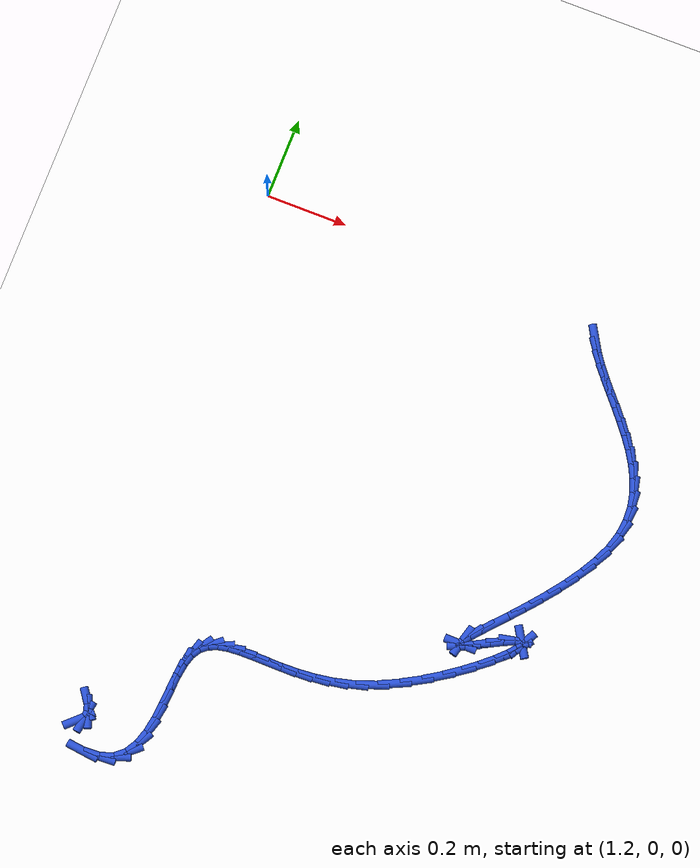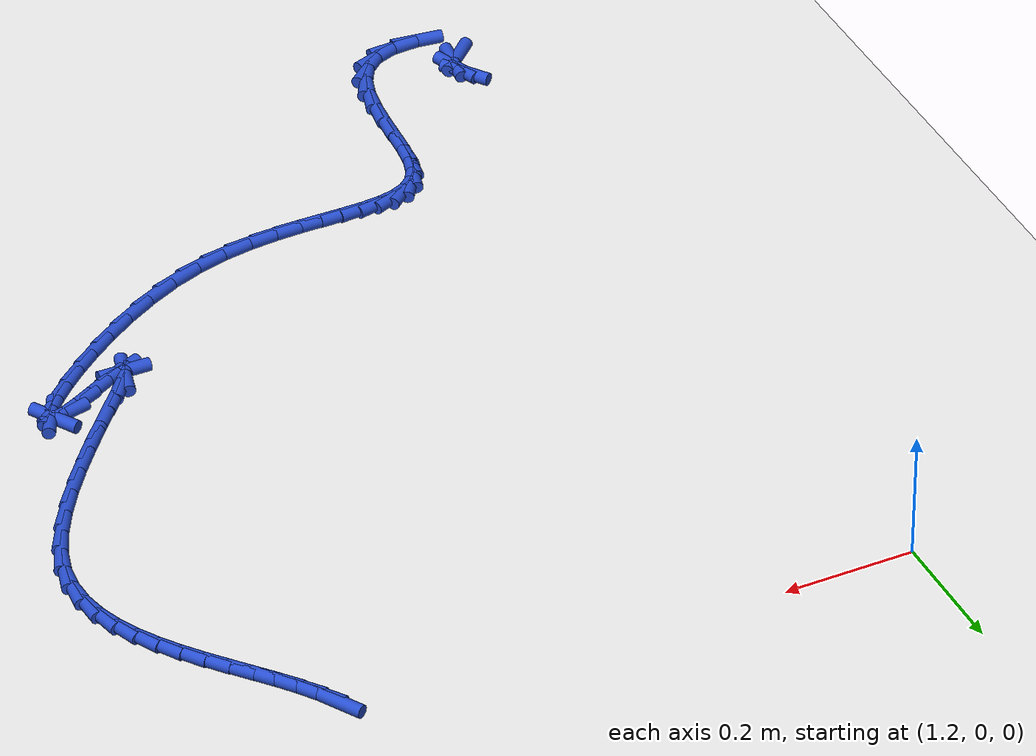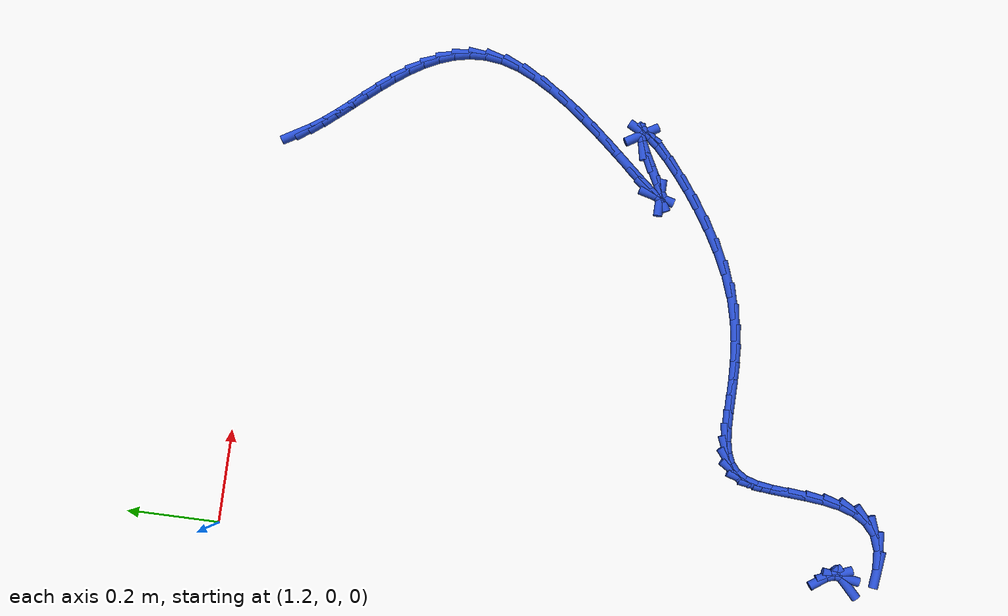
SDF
<sdf version="1.6">
 <world name="default">
  <model name="ground_plane">
   <static>1</static>
   <link name="link">
    <collision name="collision">
     <geometry><plane><normal>0 0 1</normal><size>100 100</size></plane></geometry>
     <surface><friction><ode><mu>100</mu><mu2>50</mu2></ode></friction></surface>
    </collision>
    <visual name="visual">
     <cast_shadows>0</cast_shadows>
     <geometry><plane><normal>0 0 1</normal><size>100 100</size></plane></geometry>
     <material>
      <script><uri>file://media/materials/scripts/gazebo.material</uri><name>Gazebo/WhiteGlow</name></script>
     </material>
    </visual>
   </link>
  </model>
  <model name="line">
   <link name="link_138">
    <pose>2.0597957309310257 -0.0516722177636948 0.01 0 1.57 -1.0397607232825208</pose>
    <collision name="collision">
     <geometry><cylinder><radius>0.01</radius><length>0.08</length></cylinder></geometry>
    </collision>
    <visual name="visual">
     <material>
      <script><name>Gazebo/Blue</name><uri>file://media/materials/scripts/gazebo.material</uri></script>
     </material>
     <geometry><cylinder><radius>0.01</radius><length>0.08</length></cylinder></geometry>
    </visual>
   </link>
   <link name="link_139">
    <pose>2.0750422624456326 -0.07763220129197099 0.01 0 1.57 -0.9546742133846565</pose>
    <collision name="collision">
     <geometry><cylinder><radius>0.01</radius><length>0.08</length></cylinder></geometry>
    </collision>
    <visual name="visual">
     <material>
      <script><name>Gazebo/Blue</name><uri>file://media/materials/scripts/gazebo.material</uri></script>
     </material>
     <geometry><cylinder><radius>0.01</radius><length>0.08</length></cylinder></geometry>
    </visual>
   </link>
   <link name="link_140">
    <pose>2.0935173348266654 -0.10372432611003896 0.01 0 1.57 -0.8998748665494425</pose>
    <collision name="collision">
     <geometry><cylinder><radius>0.01</radius><length>0.08</length></cylinder></geometry>
    </collision>
    <visual name="visual">
     <material>
      <script><name>Gazebo/Blue</name><uri>file://media/materials/scripts/gazebo.material</uri></script>
     </material>
     <geometry><cylinder><radius>0.01</radius><length>0.08</length></cylinder></geometry>
    </visual>
   </link>
   <link name="link_141">
    <pose>2.114430989677713 -0.13007206841040236 0.01 0 1.57 -0.8696903864607244</pose>
    <collision name="collision">
     <geometry><cylinder><radius>0.01</radius><length>0.08</length></cylinder></geometry>
    </collision>
    <visual name="visual">
     <material>
      <script><name>Gazebo/Blue</name><uri>file://media/materials/scripts/gazebo.material</uri></script>
     </material>
     <geometry><cylinder><radius>0.01</radius><length>0.08</length></cylinder></geometry>
    </visual>
   </link>
   <link name="link_142">
    <pose>2.1369932686023643 -0.15679890438556612 0.01 0 1.57 -0.8604481508920307</pose>
    <collision name="collision">
     <geometry><cylinder><radius>0.01</radius><length>0.08</length></cylinder></geometry>
    </collision>
    <visual name="visual">
     <material>
      <script><name>Gazebo/Blue</name><uri>file://media/materials/scripts/gazebo.material</uri></script>
     </material>
     <geometry><cylinder><radius>0.01</radius><length>0.08</length></cylinder></geometry>
    </visual>
   </link>
   <link name="link_143">
    <pose>2.1604142132042092 -0.18402831022803476 0.01 0 1.57 -0.8702226887666695</pose>
    <collision name="collision">
     <geometry><cylinder><radius>0.01</radius><length>0.08</length></cylinder></geometry>
    </collision>
    <visual name="visual">
     <material>
      <script><name>Gazebo/Blue</name><uri>file://media/materials/scripts/gazebo.material</uri></script>
     </material>
     <geometry><cylinder><radius>0.01</radius><length>0.08</length></cylinder></geometry>
    </visual>
   </link>
   <link name="link_144">
    <pose>2.183903865086838 -0.21188376213031285 0.01 0 1.57 -0.8985239679841446</pose>
    <collision name="collision">
     <geometry><cylinder><radius>0.01</radius><length>0.08</length></cylinder></geometry>
    </collision>
    <visual name="visual">
     <material>
      <script><name>Gazebo/Blue</name><uri>file://media/materials/scripts/gazebo.material</uri></script>
     </material>
     <geometry><cylinder><radius>0.01</radius><length>0.08</length></cylinder></geometry>
    </visual>
   </link>
   <link name="link_145">
    <pose>2.2066722658538396 -0.24048873628490486 0.01 0 1.57 -0.9460352512099913</pose>
    <collision name="collision">
     <geometry><cylinder><radius>0.01</radius><length>0.08</length></cylinder></geometry>
    </collision>
    <visual name="visual">
     <material>
      <script><name>Gazebo/Blue</name><uri>file://media/materials/scripts/gazebo.material</uri></script>
     </material>
     <geometry><cylinder><radius>0.01</radius><length>0.08</length></cylinder></geometry>
    </visual>
   </link>
   <link name="link_146">
    <pose>2.227929457108804 -0.26996670888431623 0.01 0 1.57 -1.0143355238114373</pose>
    <collision name="collision">
     <geometry><cylinder><radius>0.01</radius><length>0.08</length></cylinder></geometry>
    </collision>
    <visual name="visual">
     <material>
      <script><name>Gazebo/Blue</name><uri>file://media/materials/scripts/gazebo.material</uri></script>
     </material>
     <geometry><cylinder><radius>0.01</radius><length>0.08</length></cylinder></geometry>
    </visual>
   </link>
   <link name="link_147">
    <pose>2.24688548045532 -0.30044115612104966 0.01 0 1.57 -1.1054360098998903</pose>
    <collision name="collision">
     <geometry><cylinder><radius>0.01</radius><length>0.08</length></cylinder></geometry>
    </collision>
    <visual name="visual">
     <material>
      <script><name>Gazebo/Blue</name><uri>file://media/materials/scripts/gazebo.material</uri></script>
     </material>
     <geometry><cylinder><radius>0.01</radius><length>0.08</length></cylinder></geometry>
    </visual>
   </link>
   <link name="link_148">
    <pose>2.262750377496978 -0.3320355541876106 0.01 0 1.57 -1.2208750515340183</pose>
    <collision name="collision">
     <geometry><cylinder><radius>0.01</radius><length>0.08</length></cylinder></geometry>
    </collision>
    <visual name="visual">
     <material>
      <script><name>Gazebo/Blue</name><uri>file://media/materials/scripts/gazebo.material</uri></script>
     </material>
     <geometry><cylinder><radius>0.01</radius><length>0.08</length></cylinder></geometry>
    </visual>
   </link>
   <link name="link_149">
    <pose>2.2747341898373667 -0.3648733792765035 0.01 0 1.57 -1.3601730682101274</pose>
    <collision name="collision">
     <geometry><cylinder><radius>0.01</radius><length>0.08</length></cylinder></geometry>
    </collision>
    <visual name="visual">
     <material>
      <script><name>Gazebo/Blue</name><uri>file://media/materials/scripts/gazebo.material</uri></script>
     </material>
     <geometry><cylinder><radius>0.01</radius><length>0.08</length></cylinder></geometry>
    </visual>
   </link>
   <link name="link_150">
    <pose>2.282046959080077 -0.399078107580233 0.01 0 1.57 -1.5189654359963876</pose>
    <collision name="collision">
     <geometry><cylinder><radius>0.01</radius><length>0.08</length></cylinder></geometry>
    </collision>
    <visual name="visual">
     <material>
      <script><name>Gazebo/Blue</name><uri>file://media/materials/scripts/gazebo.material</uri></script>
     </material>
     <geometry><cylinder><radius>0.01</radius><length>0.08</length></cylinder></geometry>
    </visual>
   </link>
   <link name="link_151">
    <pose>2.283898726828697 -0.4347732152913033 0.01 0 1.57 1.4534257991829027</pose>
    <collision name="collision">
     <geometry><cylinder><radius>0.01</radius><length>0.08</length></cylinder></geometry>
    </collision>
    <visual name="visual">
     <material>
      <script><name>Gazebo/Blue</name><uri>file://media/materials/scripts/gazebo.material</uri></script>
     </material>
     <geometry><cylinder><radius>0.01</radius><length>0.08</length></cylinder></geometry>
    </visual>
   </link>
   <link name="link_152">
    <pose>2.2794995346868174 -0.47208217860221946 0.01 0 1.57 1.285906423637031</pose>
    <collision name="collision">
     <geometry><cylinder><radius>0.01</radius><length>0.08</length></cylinder></geometry>
    </collision>
    <visual name="visual">
     <material>
      <script><name>Gazebo/Blue</name><uri>file://media/materials/scripts/gazebo.material</uri></script>
     </material>
     <geometry><cylinder><radius>0.01</radius><length>0.08</length></cylinder></geometry>
    </visual>
   </link>
   <link name="link_153">
    <pose>2.268065312016221 -0.5111260101620371 0.01 0 1.57 1.1430301836455485</pose>
    <collision name="collision">
     <geometry><cylinder><radius>0.01</radius><length>0.08</length></cylinder></geometry>
    </collision>
    <visual name="visual">
     <material>
      <script><name>Gazebo/Blue</name><uri>file://media/materials/scripts/gazebo.material</uri></script>
     </material>
     <geometry><cylinder><radius>0.01</radius><length>0.08</length></cylinder></geometry>
    </visual>
   </link>
   <link name="link_154">
    <pose>2.249561243911078 -0.551712220605988 0.01 0 1.57 1.042167589555276</pose>
    <collision name="collision">
     <geometry><cylinder><radius>0.01</radius><length>0.08</length></cylinder></geometry>
    </collision>
    <visual name="visual">
     <material>
      <script><name>Gazebo/Blue</name><uri>file://media/materials/scripts/gazebo.material</uri></script>
     </material>
     <geometry><cylinder><radius>0.01</radius><length>0.08</length></cylinder></geometry>
    </visual>
   </link>
   <link name="link_155">
    <pose>2.2254279275797213 -0.5930309817235416 0.01 0 1.57 0.9710591510638292</pose>
    <collision name="collision">
     <geometry><cylinder><radius>0.01</radius><length>0.08</length></cylinder></geometry>
    </collision>
    <visual name="visual">
     <material>
      <script><name>Gazebo/Blue</name><uri>file://media/materials/scripts/gazebo.material</uri></script>
     </material>
     <geometry><cylinder><radius>0.01</radius><length>0.08</length></cylinder></geometry>
    </visual>
   </link>
   <link name="link_156">
    <pose>2.197278335852723 -0.6342003402574431 0.01 0 1.57 0.9201680870034685</pose>
    <collision name="collision">
     <geometry><cylinder><radius>0.01</radius><length>0.08</length></cylinder></geometry>
    </collision>
    <visual name="visual">
     <material>
      <script><name>Gazebo/Blue</name><uri>file://media/materials/scripts/gazebo.material</uri></script>
     </material>
     <geometry><cylinder><radius>0.01</radius><length>0.08</length></cylinder></geometry>
    </visual>
   </link>
   <link name="link_157">
    <pose>2.166725441560648 -0.6743383429504414 0.01 0 1.57 0.8839947068048503</pose>
    <collision name="collision">
     <geometry><cylinder><radius>0.01</radius><length>0.08</length></cylinder></geometry>
    </collision>
    <visual name="visual">
     <material>
      <script><name>Gazebo/Blue</name><uri>file://media/materials/scripts/gazebo.material</uri></script>
     </material>
     <geometry><cylinder><radius>0.01</radius><length>0.08</length></cylinder></geometry>
    </visual>
   </link>
   <link name="link_158">
    <pose>2.1353822175340653 -0.7125630365452842 0.01 0 1.57 0.8596940541034102</pose>
    <collision name="collision">
     <geometry><cylinder><radius>0.01</radius><length>0.08</length></cylinder></geometry>
    </collision>
    <visual name="visual">
     <material>
      <script><name>Gazebo/Blue</name><uri>file://media/materials/scripts/gazebo.material</uri></script>
     </material>
     <geometry><cylinder><radius>0.01</radius><length>0.08</length></cylinder></geometry>
    </visual>
   </link>
   <link name="link_159">
    <pose>2.104861636603543 -0.7479924677847194 0.01 0 1.57 0.8466087579717633</pose>
    <collision name="collision">
     <geometry><cylinder><radius>0.01</radius><length>0.08</length></cylinder></geometry>
    </collision>
    <visual name="visual">
     <material>
      <script><name>Gazebo/Blue</name><uri>file://media/materials/scripts/gazebo.material</uri></script>
     </material>
     <geometry><cylinder><radius>0.01</radius><length>0.08</length></cylinder></geometry>
    </visual>
   </link>
   <link name="link_160">
    <pose>2.076776671599648 -0.7797446834114944 0.01 0 1.57 0.8469386669329796</pose>
    <collision name="collision">
     <geometry><cylinder><radius>0.01</radius><length>0.08</length></cylinder></geometry>
    </collision>
    <visual name="visual">
     <material>
      <script><name>Gazebo/Blue</name><uri>file://media/materials/scripts/gazebo.material</uri></script>
     </material>
     <geometry><cylinder><radius>0.01</radius><length>0.08</length></cylinder></geometry>
    </visual>
   </link>
   <link name="link_161">
    <pose>2.0527402953529488 -0.8069377301683573 0.01 0 1.57 0.8693613831802628</pose>
    <collision name="collision">
     <geometry><cylinder><radius>0.01</radius><length>0.08</length></cylinder></geometry>
    </collision>
    <visual name="visual">
     <material>
      <script><name>Gazebo/Blue</name><uri>file://media/materials/scripts/gazebo.material</uri></script>
     </material>
     <geometry><cylinder><radius>0.01</radius><length>0.08</length></cylinder></geometry>
    </visual>
   </link>
   <link name="link_162">
    <pose>2.034365480694013 -0.8286896547980557 0.01 0 1.57 0.947135820128232</pose>
    <collision name="collision">
     <geometry><cylinder><radius>0.01</radius><length>0.08</length></cylinder></geometry>
    </collision>
    <visual name="visual">
     <material>
      <script><name>Gazebo/Blue</name><uri>file://media/materials/scripts/gazebo.material</uri></script>
     </material>
     <geometry><cylinder><radius>0.01</radius><length>0.08</length></cylinder></geometry>
    </visual>
   </link>
   <link name="link_163">
    <pose>2.0232652004534075 -0.844118504043337 0.01 0 1.57 1.3079526859081898</pose>
    <collision name="collision">
     <geometry><cylinder><radius>0.01</radius><length>0.08</length></cylinder></geometry>
    </collision>
    <visual name="visual">
     <material>
      <script><name>Gazebo/Blue</name><uri>file://media/materials/scripts/gazebo.material</uri></script>
     </material>
     <geometry><cylinder><radius>0.01</radius><length>0.08</length></cylinder></geometry>
    </visual>
   </link>
   <link name="link_164">
    <pose>2.0210524274617008 -0.8523423246469496 0.01 0 1.57 -0.016509544863523285</pose>
    <collision name="collision">
     <geometry><cylinder><radius>0.01</radius><length>0.08</length></cylinder></geometry>
    </collision>
    <visual name="visual">
     <material>
      <script><name>Gazebo/Blue</name><uri>file://media/materials/scripts/gazebo.material</uri></script>
     </material>
     <geometry><cylinder><radius>0.01</radius><length>0.08</length></cylinder></geometry>
    </visual>
   </link>
   <link name="link_165">
    <pose>2.029340134549462 -0.8524791633516404 0.01 0 1.57 0.40733411551284104</pose>
    <collision name="collision">
     <geometry><cylinder><radius>0.01</radius><length>0.08</length></cylinder></geometry>
    </collision>
    <visual name="visual">
     <material>
      <script><name>Gazebo/Blue</name><uri>file://media/materials/scripts/gazebo.material</uri></script>
     </material>
     <geometry><cylinder><radius>0.01</radius><length>0.08</length></cylinder></geometry>
    </visual>
   </link>
   <link name="link_166">
    <pose>2.049639689196283 -0.8437206082154858 0.01 0 1.57 0.4816849867467591</pose>
    <collision name="collision">
     <geometry><cylinder><radius>0.01</radius><length>0.08</length></cylinder></geometry>
    </collision>
    <visual name="visual">
     <material>
      <script><name>Gazebo/Blue</name><uri>file://media/materials/scripts/gazebo.material</uri></script>
     </material>
     <geometry><cylinder><radius>0.01</radius><length>0.08</length></cylinder></geometry>
    </visual>
   </link>
   <link name="link_167">
    <pose>2.0795758605444554 -0.8280713427796028 0.01 0 1.57 0.48369346340710695</pose>
    <collision name="collision">
     <geometry><cylinder><radius>0.01</radius><length>0.08</length></cylinder></geometry>
    </collision>
    <visual name="visual">
     <material>
      <script><name>Gazebo/Blue</name><uri>file://media/materials/scripts/gazebo.material</uri></script>
     </material>
     <geometry><cylinder><radius>0.01</radius><length>0.08</length></cylinder></geometry>
    </visual>
   </link>
   <link name="link_168">
    <pose>2.111760912364609 -0.811164070513077 0.01 0 1.57 0.4312601188456096</pose>
    <collision name="collision">
     <geometry><cylinder><radius>0.01</radius><length>0.08</length></cylinder></geometry>
    </collision>
    <visual name="visual">
     <material>
      <script><name>Gazebo/Blue</name><uri>file://media/materials/scripts/gazebo.material</uri></script>
     </material>
     <geometry><cylinder><radius>0.01</radius><length>0.08</length></cylinder></geometry>
    </visual>
   </link>
   <link name="link_169">
    <pose>2.138475787100938 -0.7988712991790559 0.01 0 1.57 0.20401162582891663</pose>
    <collision name="collision">
     <geometry><cylinder><radius>0.01</radius><length>0.08</length></cylinder></geometry>
    </collision>
    <visual name="visual">
     <material>
      <script><name>Gazebo/Blue</name><uri>file://media/materials/scripts/gazebo.material</uri></script>
     </material>
     <geometry><cylinder><radius>0.01</radius><length>0.08</length></cylinder></geometry>
    </visual>
   </link>
   <link name="link_170">
    <pose>2.1536334715701053 -0.7957353269610675 0.01 0 1.57 -1.0256027756318968</pose>
    <collision name="collision">
     <geometry><cylinder><radius>0.01</radius><length>0.08</length></cylinder></geometry>
    </collision>
    <visual name="visual">
     <material>
      <script><name>Gazebo/Blue</name><uri>file://media/materials/scripts/gazebo.material</uri></script>
     </material>
     <geometry><cylinder><radius>0.01</radius><length>0.08</length></cylinder></geometry>
    </visual>
   </link>
   <link name="link_171">
    <pose>2.1570981858108222 -0.8014478563259785 0.01 0 1.57 1.0810781060333436</pose>
    <collision name="collision">
     <geometry><cylinder><radius>0.01</radius><length>0.08</length></cylinder></geometry>
    </collision>
    <visual name="visual">
     <material>
      <script><name>Gazebo/Blue</name><uri>file://media/materials/scripts/gazebo.material</uri></script>
     </material>
     <geometry><cylinder><radius>0.01</radius><length>0.08</length></cylinder></geometry>
    </visual>
   </link>
   <link name="link_172">
    <pose>2.1500902645162663 -0.8145952786750572 0.01 0 1.57 0.8673079819084527</pose>
    <collision name="collision">
     <geometry><cylinder><radius>0.01</radius><length>0.08</length></cylinder></geometry>
    </collision>
    <visual name="visual">
     <material>
      <script><name>Gazebo/Blue</name><uri>file://media/materials/scripts/gazebo.material</uri></script>
     </material>
     <geometry><cylinder><radius>0.01</radius><length>0.08</length></cylinder></geometry>
    </visual>
   </link>
   <link name="link_173">
    <pose>2.1338300423796155 -0.8337639854095719 0.01 0 1.57 0.774667951132959</pose>
    <collision name="collision">
     <geometry><cylinder><radius>0.01</radius><length>0.08</length></cylinder></geometry>
    </collision>
    <visual name="visual">
     <material>
      <script><name>Gazebo/Blue</name><uri>file://media/materials/scripts/gazebo.material</uri></script>
     </material>
     <geometry><cylinder><radius>0.01</radius><length>0.08</length></cylinder></geometry>
    </visual>
   </link>
   <link name="link_174">
    <pose>2.1095378540940506 -0.8575403679307897 0.01 0 1.57 0.7143441198098993</pose>
    <collision name="collision">
     <geometry><cylinder><radius>0.01</radius><length>0.08</length></cylinder></geometry>
    </collision>
    <visual name="visual">
     <material>
      <script><name>Gazebo/Blue</name><uri>file://media/materials/scripts/gazebo.material</uri></script>
     </material>
     <geometry><cylinder><radius>0.01</radius><length>0.08</length></cylinder></geometry>
    </visual>
   </link>
   <link name="link_175">
    <pose>2.0784340343527496 -0.884510817639979 0.01 0 1.57 0.6646034830400148</pose>
    <collision name="collision">
     <geometry><cylinder><radius>0.01</radius><length>0.08</length></cylinder></geometry>
    </collision>
    <visual name="visual">
     <material>
      <script><name>Gazebo/Blue</name><uri>file://media/materials/scripts/gazebo.material</uri></script>
     </material>
     <geometry><cylinder><radius>0.01</radius><length>0.08</length></cylinder></geometry>
    </visual>
   </link>
   <link name="link_176">
    <pose>2.041738917848892 -0.913261725938408 0.01 0 1.57 0.6167716563879292</pose>
    <collision name="collision">
     <geometry><cylinder><radius>0.01</radius><length>0.08</length></cylinder></geometry>
    </collision>
    <visual name="visual">
     <material>
      <script><name>Gazebo/Blue</name><uri>file://media/materials/scripts/gazebo.material</uri></script>
     </material>
     <geometry><cylinder><radius>0.01</radius><length>0.08</length></cylinder></geometry>
    </visual>
   </link>
   <link name="link_177">
    <pose>2.000672839275657 -0.9423794842273451 0.01 0 1.57 0.565651511263607</pose>
    <collision name="collision">
     <geometry><cylinder><radius>0.01</radius><length>0.08</length></cylinder></geometry>
    </collision>
    <visual name="visual">
     <material>
      <script><name>Gazebo/Blue</name><uri>file://media/materials/scripts/gazebo.material</uri></script>
     </material>
     <geometry><cylinder><radius>0.01</radius><length>0.08</length></cylinder></geometry>
    </visual>
   </link>
   <link name="link_178">
    <pose>1.9564561333262231 -0.970450483908058 0.01 0 1.57 0.5066581080242607</pose>
    <collision name="collision">
     <geometry><cylinder><radius>0.01</radius><length>0.08</length></cylinder></geometry>
    </collision>
    <visual name="visual">
     <material>
      <script><name>Gazebo/Blue</name><uri>file://media/materials/scripts/gazebo.material</uri></script>
     </material>
     <geometry><cylinder><radius>0.01</radius><length>0.08</length></cylinder></geometry>
    </visual>
   </link>
   <link name="link_179">
    <pose>1.9103091346937693 -0.9960611163818149 0.01 0 1.57 0.4343478405028655</pose>
    <collision name="collision">
     <geometry><cylinder><radius>0.01</radius><length>0.08</length></cylinder></geometry>
    </collision>
    <visual name="visual">
     <material>
      <script><name>Gazebo/Blue</name><uri>file://media/materials/scripts/gazebo.material</uri></script>
     </material>
     <geometry><cylinder><radius>0.01</radius><length>0.08</length></cylinder></geometry>
    </visual>
   </link>
   <link name="link_180">
    <pose>1.8634521780714746 -1.017797773049884 0.01 0 1.57 0.3419640729251842</pose>
    <collision name="collision">
     <geometry><cylinder><radius>0.01</radius><length>0.08</length></cylinder></geometry>
    </collision>
    <visual name="visual">
     <material>
      <script><name>Gazebo/Blue</name><uri>file://media/materials/scripts/gazebo.material</uri></script>
     </material>
     <geometry><cylinder><radius>0.01</radius><length>0.08</length></cylinder></geometry>
    </visual>
   </link>
   <link name="link_181">
    <pose>1.8170844585515442 -1.034302281864493 0.01 0 1.57 0.24136681327902096</pose>
    <collision name="collision">
     <geometry><cylinder><radius>0.01</radius><length>0.08</length></cylinder></geometry>
    </collision>
    <visual name="visual">
     <material>
      <script><name>Gazebo/Blue</name><uri>file://media/materials/scripts/gazebo.material</uri></script>
     </material>
     <geometry><cylinder><radius>0.01</radius><length>0.08</length></cylinder></geometry>
    </visual>
   </link>
   <link name="link_182">
    <pose>1.7719488505696832 -1.04541312739217 0.01 0 1.57 0.15270525729806328</pose>
    <collision name="collision">
     <geometry><cylinder><radius>0.01</radius><length>0.08</length></cylinder></geometry>
    </collision>
    <visual name="visual">
     <material>
      <script><name>Gazebo/Blue</name><uri>file://media/materials/scripts/gazebo.material</uri></script>
     </material>
     <geometry><cylinder><radius>0.01</radius><length>0.08</length></cylinder></geometry>
    </visual>
   </link>
   <link name="link_183">
    <pose>1.7283479206053245 -1.052123459062169 0.01 0 1.57 0.08000768963831066</pose>
    <collision name="collision">
     <geometry><cylinder><radius>0.01</radius><length>0.08</length></cylinder></geometry>
    </collision>
    <visual name="visual">
     <material>
      <script><name>Gazebo/Blue</name><uri>file://media/materials/scripts/gazebo.material</uri></script>
     </material>
     <geometry><cylinder><radius>0.01</radius><length>0.08</length></cylinder></geometry>
    </visual>
   </link>
   <link name="link_184">
    <pose>1.6865662993580692 -1.0554734611448433 0.01 0 1.57 0.0259497415940616</pose>
    <collision name="collision">
     <geometry><cylinder><radius>0.01</radius><length>0.08</length></cylinder></geometry>
    </collision>
    <visual name="visual">
     <material>
      <script><name>Gazebo/Blue</name><uri>file://media/materials/scripts/gazebo.material</uri></script>
     </material>
     <geometry><cylinder><radius>0.01</radius><length>0.08</length></cylinder></geometry>
    </visual>
   </link>
   <link name="link_185">
    <pose>1.646888617527519 -1.0565033179105454 0.01 0 1.57 -0.0067070659266696584</pose>
    <collision name="collision">
     <geometry><cylinder><radius>0.01</radius><length>0.08</length></cylinder></geometry>
    </collision>
    <visual name="visual">
     <material>
      <script><name>Gazebo/Blue</name><uri>file://media/materials/scripts/gazebo.material</uri></script>
     </material>
     <geometry><cylinder><radius>0.01</radius><length>0.08</length></cylinder></geometry>
    </visual>
   </link>
   <link name="link_186">
    <pose>1.6095995058132746 -1.0562532136296283 0.01 0 1.57 -0.014150959617387457</pose>
    <collision name="collision">
     <geometry><cylinder><radius>0.01</radius><length>0.08</length></cylinder></geometry>
    </collision>
    <visual name="visual">
     <material>
      <script><name>Gazebo/Blue</name><uri>file://media/materials/scripts/gazebo.material</uri></script>
     </material>
     <geometry><cylinder><radius>0.01</radius><length>0.08</length></cylinder></geometry>
    </visual>
   </link>
   <link name="link_187">
    <pose>1.5749835949149378 -1.0557633325724456 0.01 0 1.57 0.009808443366450731</pose>
    <collision name="collision">
     <geometry><cylinder><radius>0.01</radius><length>0.08</length></cylinder></geometry>
    </collision>
    <visual name="visual">
     <material>
      <script><name>Gazebo/Blue</name><uri>file://media/materials/scripts/gazebo.material</uri></script>
     </material>
     <geometry><cylinder><radius>0.01</radius><length>0.08</length></cylinder></geometry>
    </visual>
   </link>
   <link name="link_188">
    <pose>1.5433255155321097 -1.05607385900935 0.01 0 1.57 0.07555785466414067</pose>
    <collision name="collision">
     <geometry><cylinder><radius>0.01</radius><length>0.08</length></cylinder></geometry>
    </collision>
    <visual name="visual">
     <material>
      <script><name>Gazebo/Blue</name><uri>file://media/materials/scripts/gazebo.material</uri></script>
     </material>
     <geometry><cylinder><radius>0.01</radius><length>0.08</length></cylinder></geometry>
    </visual>
   </link>
   <link name="link_189">
    <pose>1.5149098983643925 -1.0582249772106953 0.01 0 1.57 0.19948822288185403</pose>
    <collision name="collision">
     <geometry><cylinder><radius>0.01</radius><length>0.08</length></cylinder></geometry>
    </collision>
    <visual name="visual">
     <material>
      <script><name>Gazebo/Blue</name><uri>file://media/materials/scripts/gazebo.material</uri></script>
     </material>
     <geometry><cylinder><radius>0.01</radius><length>0.08</length></cylinder></geometry>
    </visual>
   </link>
   <link name="link_190">
    <pose>1.490021374111386 -1.0632568714468338 0.01 0 1.57 0.4016783085799124</pose>
    <collision name="collision">
     <geometry><cylinder><radius>0.01</radius><length>0.08</length></cylinder></geometry>
    </collision>
    <visual name="visual">
     <material>
      <script><name>Gazebo/Blue</name><uri>file://media/materials/scripts/gazebo.material</uri></script>
     </material>
     <geometry><cylinder><radius>0.01</radius><length>0.08</length></cylinder></geometry>
    </visual>
   </link>
   <link name="link_191">
    <pose>1.4689445734726925 -1.0722097259881183 0.01 0 1.57 0.6864665791266112</pose>
    <collision name="collision">
     <geometry><cylinder><radius>0.01</radius><length>0.08</length></cylinder></geometry>
    </collision>
    <visual name="visual">
     <material>
      <script><name>Gazebo/Blue</name><uri>file://media/materials/scripts/gazebo.material</uri></script>
     </material>
     <geometry><cylinder><radius>0.01</radius><length>0.08</length></cylinder></geometry>
    </visual>
   </link>
   <link name="link_192">
    <pose>1.4519641271479142 -1.086123725104903 0.01 0 1.57 1.0067137492980427</pose>
    <collision name="collision">
     <geometry><cylinder><radius>0.01</radius><length>0.08</length></cylinder></geometry>
    </collision>
    <visual name="visual">
     <material>
      <script><name>Gazebo/Blue</name><uri>file://media/materials/scripts/gazebo.material</uri></script>
     </material>
     <geometry><cylinder><radius>0.01</radius><length>0.08</length></cylinder></geometry>
    </visual>
   </link>
   <link name="link_193">
    <pose>1.439364665836651 -1.1060390530675401 0.01 0 1.57 1.275252026650494</pose>
    <collision name="collision">
     <geometry><cylinder><radius>0.01</radius><length>0.08</length></cylinder></geometry>
    </collision>
    <visual name="visual">
     <material>
      <script><name>Gazebo/Blue</name><uri>file://media/materials/scripts/gazebo.material</uri></script>
     </material>
     <geometry><cylinder><radius>0.01</radius><length>0.08</length></cylinder></geometry>
    </visual>
   </link>
   <link name="link_194">
    <pose>1.4312461768953817 -1.1327041833897165 0.01 0 1.57 1.4260348934813747</pose>
    <collision name="collision">
     <geometry><cylinder><radius>0.01</radius><length>0.08</length></cylinder></geometry>
    </collision>
    <visual name="visual">
     <material>
      <script><name>Gazebo/Blue</name><uri>file://media/materials/scripts/gazebo.material</uri></script>
     </material>
     <geometry><cylinder><radius>0.01</radius><length>0.08</length></cylinder></geometry>
    </visual>
   </link>
   <link name="link_195">
    <pose>1.4265358961735295 -1.1650148055977947 0.01 0 1.57 1.4925168596893914</pose>
    <collision name="collision">
     <geometry><cylinder><radius>0.01</radius><length>0.08</length></cylinder></geometry>
    </collision>
    <visual name="visual">
     <material>
      <script><name>Gazebo/Blue</name><uri>file://media/materials/scripts/gazebo.material</uri></script>
     </material>
     <geometry><cylinder><radius>0.01</radius><length>0.08</length></cylinder></geometry>
    </visual>
   </link>
   <link name="link_196">
    <pose>1.423702123080202 -1.2011415535838421 0.01 0 1.57 1.5055541620408506</pose>
    <collision name="collision">
     <geometry><cylinder><radius>0.01</radius><length>0.08</length></cylinder></geometry>
    </collision>
    <visual name="visual">
     <material>
      <script><name>Gazebo/Blue</name><uri>file://media/materials/scripts/gazebo.material</uri></script>
     </material>
     <geometry><cylinder><radius>0.01</radius><length>0.08</length></cylinder></geometry>
    </visual>
   </link>
   <link name="link_197">
    <pose>1.4212120912147082 -1.2392533774089403 0.01 0 1.57 1.474946283586243</pose>
    <collision name="collision">
     <geometry><cylinder><radius>0.01</radius><length>0.08</length></cylinder></geometry>
    </collision>
    <visual name="visual">
     <material>
      <script><name>Gazebo/Blue</name><uri>file://media/materials/scripts/gazebo.material</uri></script>
     </material>
     <geometry><cylinder><radius>0.01</radius><length>0.08</length></cylinder></geometry>
    </visual>
   </link>
   <link name="link_198">
    <pose>1.4175330341763583 -1.2775192271341727 0.01 0 1.57 1.3976088927202686</pose>
    <collision name="collision">
     <geometry><cylinder><radius>0.01</radius><length>0.08</length></cylinder></geometry>
    </collision>
    <visual name="visual">
     <material>
      <script><name>Gazebo/Blue</name><uri>file://media/materials/scripts/gazebo.material</uri></script>
     </material>
     <geometry><cylinder><radius>0.01</radius><length>0.08</length></cylinder></geometry>
    </visual>
   </link>
   <link name="link_199">
    <pose>1.4111321855644616 -1.3141080528206213 0.01 0 1.57 1.2591869685359367</pose>
    <collision name="collision">
     <geometry><cylinder><radius>0.01</radius><length>0.08</length></cylinder></geometry>
    </collision>
    <visual name="visual">
     <material>
      <script><name>Gazebo/Blue</name><uri>file://media/materials/scripts/gazebo.material</uri></script>
     </material>
     <geometry><cylinder><radius>0.01</radius><length>0.08</length></cylinder></geometry>
    </visual>
   </link>
   <link name="link_200">
    <pose>1.4004767789783292 -1.3471888045293672 0.01 0 1.57 1.035754610768011</pose>
    <collision name="collision">
     <geometry><cylinder><radius>0.01</radius><length>0.08</length></cylinder></geometry>
    </collision>
    <visual name="visual">
     <material>
      <script><name>Gazebo/Blue</name><uri>file://media/materials/scripts/gazebo.material</uri></script>
     </material>
     <geometry><cylinder><radius>0.01</radius><length>0.08</length></cylinder></geometry>
    </visual>
   </link>
   <link name="link_201">
    <pose>1.3840340480172704 -1.3749304323214935 0.01 0 1.57 0.7135379026540098</pose>
    <collision name="collision">
     <geometry><cylinder><radius>0.01</radius><length>0.08</length></cylinder></geometry>
    </collision>
    <visual name="visual">
     <material>
      <script><name>Gazebo/Blue</name><uri>file://media/materials/scripts/gazebo.material</uri></script>
     </material>
     <geometry><cylinder><radius>0.01</radius><length>0.08</length></cylinder></geometry>
    </visual>
   </link>
   <link name="link_202">
    <pose>1.3602712262805952 -1.3955018862580824 0.01 0 1.57 0.34115532194316756</pose>
    <collision name="collision">
     <geometry><cylinder><radius>0.01</radius><length>0.08</length></cylinder></geometry>
    </collision>
    <visual name="visual">
     <material>
      <script><name>Gazebo/Blue</name><uri>file://media/materials/scripts/gazebo.material</uri></script>
     </material>
     <geometry><cylinder><radius>0.01</radius><length>0.08</length></cylinder></geometry>
    </visual>
   </link>
   <link name="link_203">
    <pose>1.3276646533786343 -1.4070784357720005 0.01 0 1.57 0.04788909427080346</pose>
    <collision name="collision">
     <geometry><cylinder><radius>0.01</radius><length>0.08</length></cylinder></geometry>
    </collision>
    <visual name="visual">
     <material>
      <script><name>Gazebo/Blue</name><uri>file://media/materials/scripts/gazebo.material</uri></script>
     </material>
     <geometry><cylinder><radius>0.01</radius><length>0.08</length></cylinder></geometry>
    </visual>
   </link>
   <link name="link_204">
    <pose>1.286446483315798 -1.409053846947924 0.01 0 1.57 -0.12113166402721193</pose>
    <collision name="collision">
     <geometry><cylinder><radius>0.01</radius><length>0.08</length></cylinder></geometry>
    </collision>
    <visual name="visual">
     <material>
      <script><name>Gazebo/Blue</name><uri>file://media/materials/scripts/gazebo.material</uri></script>
     </material>
     <geometry><cylinder><radius>0.01</radius><length>0.08</length></cylinder></geometry>
    </visual>
   </link>
   <link name="link_215">
    <pose>1.250080453561306 -1.3433888985988385 0.01 0 1.57 0.7568141330050006</pose>
    <collision name="collision">
     <geometry><cylinder><radius>0.01</radius><length>0.08</length></cylinder></geometry>
    </collision>
    <visual name="visual">
     <material>
      <script><name>Gazebo/Blue</name><uri>file://media/materials/scripts/gazebo.material</uri></script>
     </material>
     <geometry><cylinder><radius>0.01</radius><length>0.08</length></cylinder></geometry>
    </visual>
   </link>
   <link name="link_216">
    <pose>1.2610448555460791 -1.3330340526654836 0.01 0 1.57 1.4364207285540627</pose>
    <collision name="collision">
     <geometry><cylinder><radius>0.01</radius><length>0.08</length></cylinder></geometry>
    </collision>
    <visual name="visual">
     <material>
      <script><name>Gazebo/Blue</name><uri>file://media/materials/scripts/gazebo.material</uri></script>
     </material>
     <geometry><cylinder><radius>0.01</radius><length>0.08</length></cylinder></geometry>
    </visual>
   </link>
   <link name="link_217">
    <pose>1.2629411328087112 -1.3190073249200904 0.01 0 1.57 -1.2096417405027549</pose>
    <collision name="collision">
     <geometry><cylinder><radius>0.01</radius><length>0.08</length></cylinder></geometry>
    </collision>
    <visual name="visual">
     <material>
      <script><name>Gazebo/Blue</name><uri>file://media/materials/scripts/gazebo.material</uri></script>
     </material>
     <geometry><cylinder><radius>0.01</radius><length>0.08</length></cylinder></geometry>
    </visual>
   </link>
   <link name="link_218">
    <pose>1.2564759436244948 -1.3018910432074589 0.01 0 1.57 -0.9470729822238685</pose>
    <collision name="collision">
     <geometry><cylinder><radius>0.01</radius><length>0.08</length></cylinder></geometry>
    </collision>
    <visual name="visual">
     <material>
      <script><name>Gazebo/Blue</name><uri>file://media/materials/scripts/gazebo.material</uri></script>
     </material>
     <geometry><cylinder><radius>0.01</radius><length>0.08</length></cylinder></geometry>
    </visual>
   </link>
  </model>
 </world>
</sdf>
